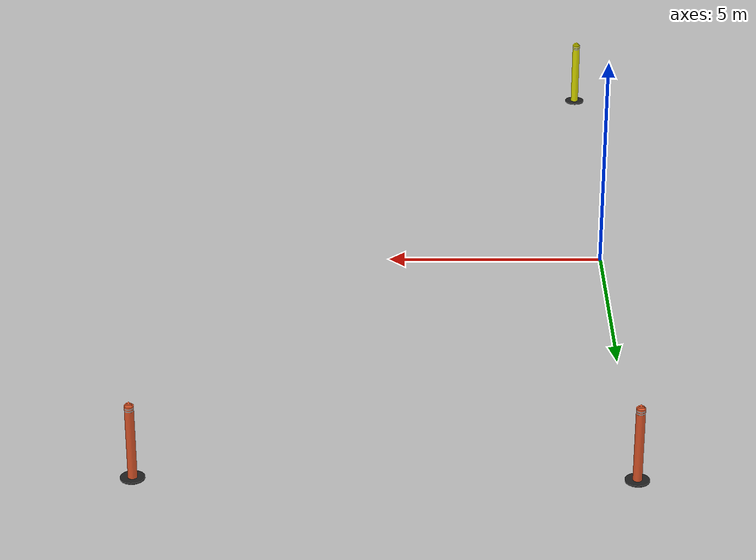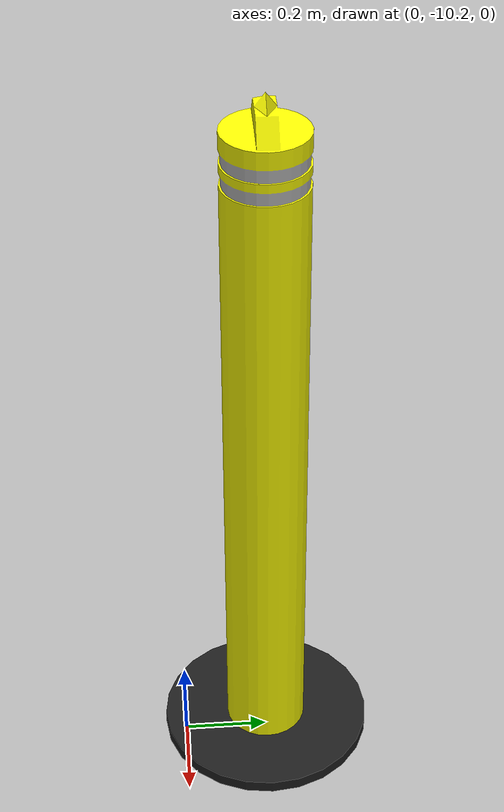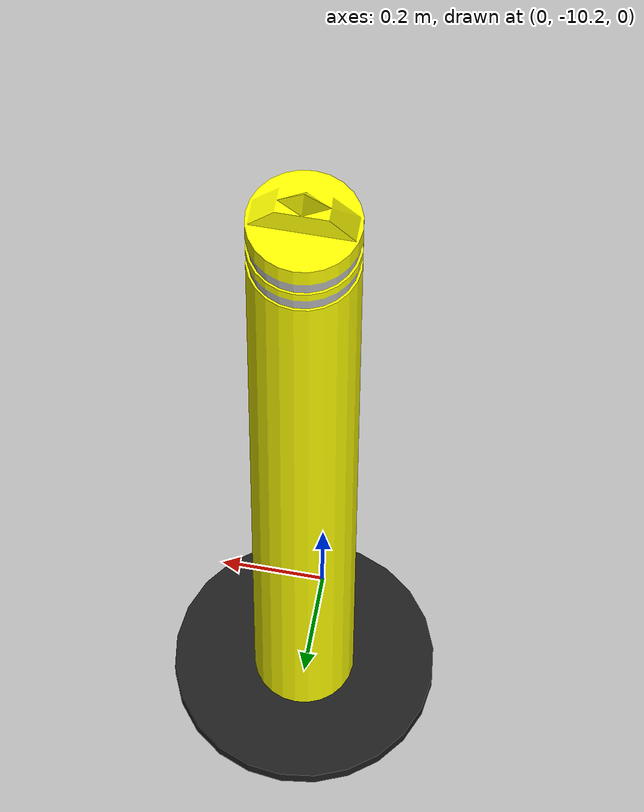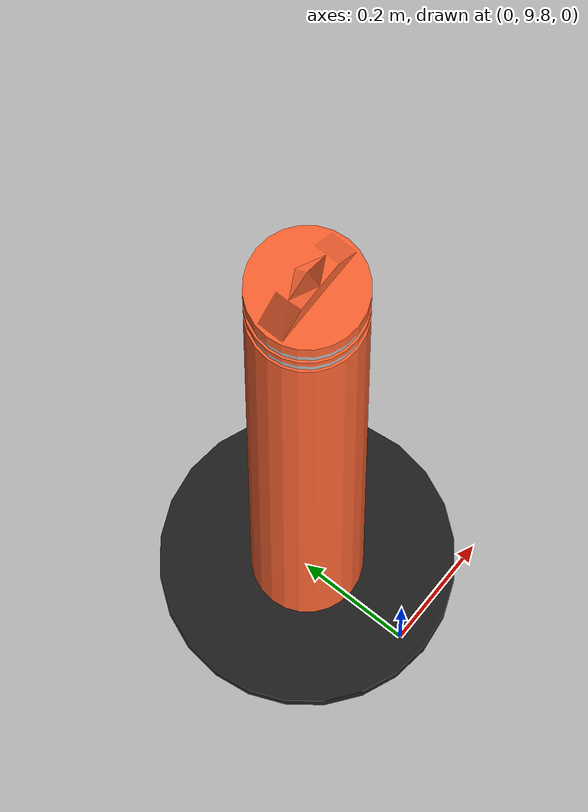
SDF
<sdf version="1.6">
 <world name="default">
  <light name="sun" type="directional">
   <pose>0 0 10 0 -0 0</pose>
   <diffuse>0.8 0.8 0.8 1</diffuse>
   <specular>0.1 0.1 0.1 1</specular>
   <attenuation>
    <range>1000</range>
    <constant>0.9</constant>
    <linear>0.01</linear>
    <quadratic>0.001</quadratic>
   </attenuation>
   <direction>-0.5 0.5 -1</direction>
  </light>
  <gravity>0 0 -9.8</gravity>
  <magnetic_field>6e-06 2.3e-05 -4.2e-05</magnetic_field>
  <atmosphere type="adiabatic"/>
  <physics name="default_physics" default="0" type="ode">
   <max_step_size>0.001</max_step_size>
   <real_time_factor>1</real_time_factor>
   <real_time_update_rate>1000</real_time_update_rate>
  </physics>
  <scene><ambient>0.4 0.4 0.4 1</ambient><background>0.7 0.7 0.7 1</background><shadows>1</shadows></scene>
  <spherical_coordinates>
   <surface_model>EARTH_WGS84</surface_model>
   <latitude_deg>0</latitude_deg>
   <longitude_deg>0</longitude_deg>
   <elevation>0</elevation>
   <heading_deg>0</heading_deg>
  </spherical_coordinates>
  <model name="brick_plane">
   <static>1</static>
   <link name="link">
    <collision name="collision">
     <geometry><plane><normal>0 0 1</normal><size>100 100</size></plane></geometry>
     <surface><friction><ode><mu>100</mu><mu2>50</mu2></ode></friction></surface>
    </collision>
    <visual name="visual">
     <cast_shadows>0</cast_shadows>
     <pose>0 0 -0.04 0 -0 0</pose>
     <geometry><mesh><uri>model://brick_plane/meshes/BrickRoad.dae</uri></mesh></geometry>
    </visual>
   </link>
   <pose>-0.145559 -0.040486 0 0 -0 0</pose>
  </model>
  <light name="user_point_light_0" type="point">
   <pose>-40.2877 36.9378 1 0 -0 0</pose>
   <diffuse>0.5 0.5 0.5 1</diffuse>
   <specular>0.1 0.1 0.1 1</specular>
   <attenuation>
    <range>20</range>
    <constant>0.5</constant>
    <linear>0.01</linear>
    <quadratic>0.001</quadratic>
   </attenuation>
   <cast_shadows>0</cast_shadows>
   <direction>0 0 -1</direction>
  </light>
  <light name="user_point_light_0_clone" type="point">
   <pose>-43.3445 16.5003 10 0 -0 0</pose>
   <diffuse>1 1 1 1</diffuse>
   <specular>1 1 1 1</specular>
   <direction>0 0 -1</direction>
   <attenuation>
    <range>100000</range>
    <constant>0.5</constant>
    <linear>0.01</linear>
    <quadratic>0.001</quadratic>
   </attenuation>
  </light>
  <light name="user_point_light_0_clone_0" type="point">
   <pose>-41.8744 -4.62896 10 0 -0 0</pose>
   <diffuse>1 1 1 1</diffuse>
   <specular>1 1 1 1</specular>
   <direction>0 0 -1</direction>
   <attenuation>
    <range>100000</range>
    <constant>0.5</constant>
    <linear>0.01</linear>
    <quadratic>0.001</quadratic>
   </attenuation>
  </light>
  <light name="user_point_light_0_clone_1" type="point">
   <pose>-45.3384 -27.6087 10 0 -0 0</pose>
   <diffuse>1 1 1 1</diffuse>
   <specular>1 1 1 1</specular>
   <direction>0 0 -1</direction>
   <attenuation>
    <range>100000</range>
    <constant>0.5</constant>
    <linear>0.01</linear>
    <quadratic>0.001</quadratic>
   </attenuation>
  </light>
  <light name="user_point_light_0_clone_2" type="point">
   <pose>-41.0308 -51.4934 10 0 -0 0</pose>
   <diffuse>1 1 1 1</diffuse>
   <specular>1 1 1 1</specular>
   <direction>0 0 -1</direction>
   <attenuation>
    <range>100000</range>
    <constant>0.5</constant>
    <linear>0.01</linear>
    <quadratic>0.001</quadratic>
   </attenuation>
  </light>
  <light name="user_point_light_0_clone_3" type="point">
   <pose>-13.091 -48.6057 10 0 -0 0</pose>
   <diffuse>1 1 1 1</diffuse>
   <specular>1 1 1 1</specular>
   <direction>0 0 -1</direction>
   <attenuation>
    <range>100000</range>
    <constant>0.5</constant>
    <linear>0.01</linear>
    <quadratic>0.001</quadratic>
   </attenuation>
  </light>
  <light name="user_point_light_0_clone_4" type="point">
   <pose>17.8273 -50.2126 10 0 -0 0</pose>
   <diffuse>1 1 1 1</diffuse>
   <specular>1 1 1 1</specular>
   <direction>0 0 -1</direction>
   <attenuation>
    <range>100000</range>
    <constant>0.5</constant>
    <linear>0.01</linear>
    <quadratic>0.001</quadratic>
   </attenuation>
  </light>
  <light name="user_point_light_0_clone_5" type="point">
   <pose>43.0105 -50.5018 10 0 -0 0</pose>
   <diffuse>1 1 1 1</diffuse>
   <specular>1 1 1 1</specular>
   <direction>0 0 -1</direction>
   <attenuation>
    <range>100000</range>
    <constant>0.5</constant>
    <linear>0.01</linear>
    <quadratic>0.001</quadratic>
   </attenuation>
  </light>
  <light name="user_point_light_0_clone_6" type="point">
   <pose>-30.8096 43.6215 10 0 -0 0</pose>
   <diffuse>1 1 1 1</diffuse>
   <specular>1 1 1 1</specular>
   <direction>0 0 -1</direction>
   <attenuation>
    <range>100000</range>
    <constant>0.5</constant>
    <linear>0.01</linear>
    <quadratic>0.001</quadratic>
   </attenuation>
  </light>
  <light name="user_point_light_0_clone_7" type="point">
   <pose>-6.06965 44.6895 10 0 -0 0</pose>
   <diffuse>1 1 1 1</diffuse>
   <specular>1 1 1 1</specular>
   <direction>0 0 -1</direction>
   <attenuation>
    <range>100000</range>
    <constant>0.5</constant>
    <linear>0.01</linear>
    <quadratic>0.001</quadratic>
   </attenuation>
  </light>
  <light name="user_point_light_0_clone_8" type="point">
   <pose>12.7263 46.5664 10 0 -0 0</pose>
   <diffuse>1 1 1 1</diffuse>
   <specular>1 1 1 1</specular>
   <direction>0 0 -1</direction>
   <attenuation>
    <range>100000</range>
    <constant>0.5</constant>
    <linear>0.01</linear>
    <quadratic>0.001</quadratic>
   </attenuation>
  </light>
  <light name="user_point_light_0_clone_9" type="point">
   <pose>31.1126 44.5953 10 0 -0 0</pose>
   <diffuse>1 1 1 1</diffuse>
   <specular>1 1 1 1</specular>
   <direction>0 0 -1</direction>
   <attenuation>
    <range>100000</range>
    <constant>0.5</constant>
    <linear>0.01</linear>
    <quadratic>0.001</quadratic>
   </attenuation>
  </light>
  <light name="user_point_light_0_clone_10" type="point">
   <pose>48.6896 31.6 10 0 -0 0</pose>
   <diffuse>1 1 1 1</diffuse>
   <specular>1 1 1 1</specular>
   <direction>0 0 -1</direction>
   <attenuation>
    <range>100000</range>
    <constant>0.5</constant>
    <linear>0.01</linear>
    <quadratic>0.001</quadratic>
   </attenuation>
  </light>
  <light name="user_point_light_0_clone_11" type="point">
   <pose>54.0783 8.97523 10 0 -0 0</pose>
   <diffuse>1 1 1 1</diffuse>
   <specular>1 1 1 1</specular>
   <direction>0 0 -1</direction>
   <attenuation>
    <range>100000</range>
    <constant>0.5</constant>
    <linear>0.01</linear>
    <quadratic>0.001</quadratic>
   </attenuation>
  </light>
  <light name="user_point_light_0_clone_12" type="point">
   <pose>59.1715 -20.1842 10 0 -0 0</pose>
   <diffuse>1 1 1 1</diffuse>
   <specular>1 1 1 1</specular>
   <direction>0 0 -1</direction>
   <attenuation>
    <range>100000</range>
    <constant>0.5</constant>
    <linear>0.01</linear>
    <quadratic>0.001</quadratic>
   </attenuation>
  </light>
  <light name="user_point_light_0_clone_13" type="point">
   <pose>56.6391 -41.8663 10 0 -0 0</pose>
   <diffuse>1 1 1 1</diffuse>
   <specular>1 1 1 1</specular>
   <direction>0 0 -1</direction>
   <attenuation>
    <range>100000</range>
    <constant>0.5</constant>
    <linear>0.01</linear>
    <quadratic>0.001</quadratic>
   </attenuation>
  </light>
  <model name="pylon_yellow">
   <include><uri>model://pylon_yellow</uri></include>
   <pose>0 -10 0 0 -0 0</pose>
  </model>
  <model name="pylon_orange">
   <include><uri>model://pylon_orange</uri></include>
   <pose>0 10 0 0 -0 0</pose>
  </model>
  <model name="pylon_orange2">
   <include><uri>model://pylon_orange</uri></include>
   <pose>10 10 0 0 -0 0</pose>
  </model>
 </world>
</sdf>

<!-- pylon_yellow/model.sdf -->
<sdf version='1.4'>
  <model name="pylon_yellow">
    <static>false</static>

    <link name='pylon_body'>

      <inertial>
        <mass>0.8</mass>
      </inertial>

      <pose>0 0 .775 0 0 0</pose>
      <collision name='collision'>
        <geometry>
          <cylinder>
            <radius>.05</radius>
            <length>1.5</length>
          </cylinder>
        </geometry>
      </collision>

      <visual name='visual'>
        <pose>0 0 -.75 0 0 0</pose>
        <geometry>
          <mesh>
            <uri>model://pylon_yellow/meshes/YellowPylon.dae</uri>
          </mesh>
        </geometry>

      </visual>

    </link>
    <link name='pylon_base'>

      <inertial>
        <mass>3.62</mass>
      </inertial>

      <pose>0 0 .025 0 0 0</pose>
      <collision name='collision'>
        <geometry>
          <cylinder>
            <radius>.25</radius>
            <length>.05</length>
          </cylinder>
        </geometry>
      </collision>

    </link>

    <joint name="base_body" type="fixed">
      <parent>pylon_base</parent>
      <child>pylon_body</child>
      <pose>0 0 0 0 0 0</pose>

    </joint>

  </model>
</sdf>

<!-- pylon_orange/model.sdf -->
<sdf version='1.4'>
  <model name="pylon_orange">
    <static>false</static>

    <link name='pylon_body'>

      <inertial>
        <mass>0.8</mass>
      </inertial>

      <pose>0 0 .775 0 0 0</pose>
      <collision name='collision'>
        <geometry>
          <cylinder>
            <radius>.05</radius>
            <length>1.5</length>
          </cylinder>
        </geometry>
      </collision>

      <visual name='visual'>
        <pose>0 0 -.75 0 0 0</pose>
        <geometry>
          <mesh>
            <uri>model://pylon_orange/meshes/OrangePylon.dae</uri>
          </mesh>
        </geometry>

      </visual>

    </link>
    <link name='pylon_base'>

      <inertial>
        <mass>3.62</mass>
      </inertial>

      <pose>0 0 .025 0 0 0</pose>
      <collision name='collision'>
        <geometry>
          <cylinder>
            <radius>.25</radius>
            <length>.05</length>
          </cylinder>
        </geometry>
      </collision>

    </link>

    <joint name="base_body" type="fixed">
      <parent>pylon_base</parent>
      <child>pylon_body</child>
      <pose>0 0 0 0 0 0</pose>

    </joint>

  </model>
</sdf>
